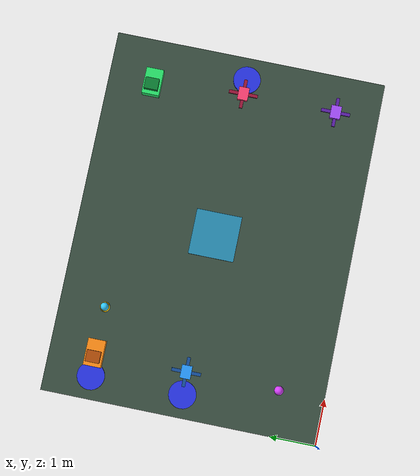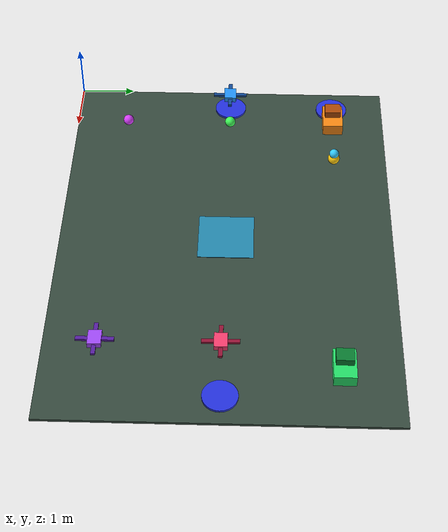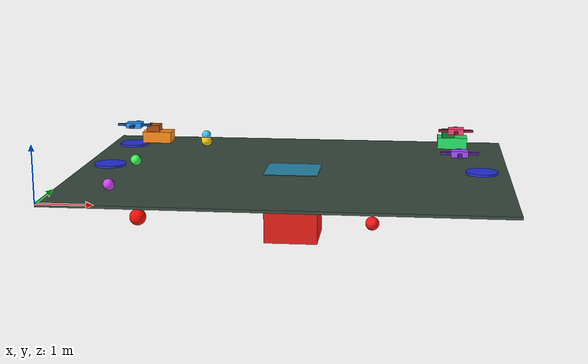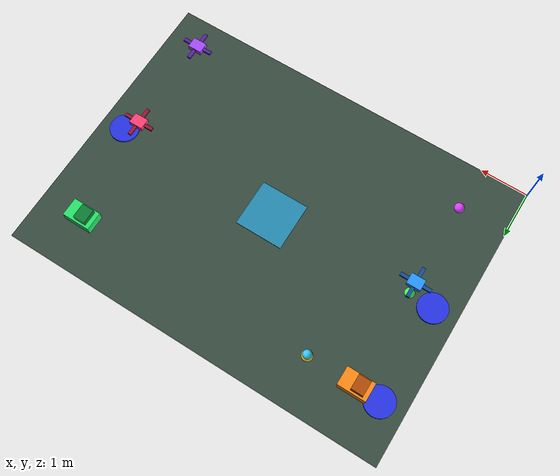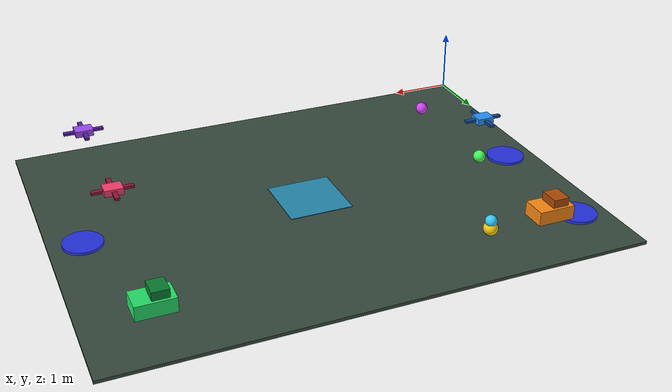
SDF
<?xml version="1.0"?>
<sdf version="1.10">
  <world name="sentinel">
    <gravity>0 0 0</gravity>
    <scene>
      <ambient>0.35 0.35 0.4 1</ambient>
      <background>0.06 0.08 0.12 1</background>
      <shadows>true</shadows>
    </scene>
    <light name="sun" type="directional">
      <pose>4 3 10 0 0 0</pose>
      <diffuse>0.9 0.9 0.9 1</diffuse>
      <specular>0.2 0.2 0.2 1</specular>
      <direction>-0.4 -0.5 -1</direction>
    </light>
    <model name="ground">
      <static>true</static>
      <pose>4 3 -0.03 0 0 0</pose>
      <link name="ground-link">
        <visual name="ground-visual">
          <geometry><box><size>8 6 0.05</size></box></geometry>
          <material><ambient>0.18 0.22 0.2 1</ambient><diffuse>0.22 0.3 0.25 1</diffuse></material>
        </visual>
      </link>
    </model>
    <model name="central-lane">
      <static>true</static>
      <pose>4 3 0.005 0 0 0</pose>
      <link name="lane-link">
        <visual name="lane-visual">
          <geometry><box><size>1 1 0.01</size></box></geometry>
          <material><ambient>0.15 0.55 0.7 1</ambient><diffuse>0.15 0.55 0.7 1</diffuse></material>
        </visual>
      </link>
    </model>
    <model name="central-lane-block">
      <static>true</static>
      <pose>4 3 -1 0 0 0</pose>
      <link name="block-link">
        <visual name="block-visual">
          <geometry><box><size>1 1 0.6</size></box></geometry>
          <material><ambient>0.8 0.08 0.05 1</ambient><diffuse>0.9 0.12 0.08 1</diffuse><emissive>0.3 0.02 0.01 1</emissive></material>
        </visual>
      </link>
    </model>
    <model name="partition-indicator">
      <static>true</static>
      <pose>1 3 -1 0 0 0</pose>
      <link name="indicator-link">
        <visual name="indicator-visual">
          <geometry><sphere><radius>0.16</radius></sphere></geometry>
          <material><ambient>1 0.05 0.02 1</ambient><diffuse>1 0.05 0.02 1</diffuse><emissive>0.8 0.02 0.01 1</emissive></material>
        </visual>
      </link>
    </model>
    <model name="uav-alpha">
      <static>true</static>
      <pose>1 3 0.8 0 0 0</pose>
      <link name="body">
        <visual name="body-visual"><geometry><box><size>0.28 0.22 0.1</size></box></geometry><material><ambient>0.15 0.6 1 1</ambient><diffuse>0.15 0.6 1 1</diffuse></material></visual>
        <visual name="arm-x"><geometry><box><size>0.62 0.07 0.04</size></box></geometry><material><ambient>0.08 0.3 0.6 1</ambient><diffuse>0.08 0.3 0.6 1</diffuse></material></visual>
        <visual name="arm-y"><geometry><box><size>0.07 0.62 0.04</size></box></geometry><material><ambient>0.08 0.3 0.6 1</ambient><diffuse>0.08 0.3 0.6 1</diffuse></material></visual>
      </link>
    </model>
    <model name="uav-bravo">
      <static>true</static>
      <pose>7 1 0.8 0 0 0</pose>
      <link name="body">
        <visual name="body-visual"><geometry><box><size>0.28 0.22 0.1</size></box></geometry><material><ambient>0.65 0.3 1 1</ambient><diffuse>0.65 0.3 1 1</diffuse></material></visual>
        <visual name="arm-x"><geometry><box><size>0.62 0.07 0.04</size></box></geometry><material><ambient>0.35 0.12 0.65 1</ambient><diffuse>0.35 0.12 0.65 1</diffuse></material></visual>
        <visual name="arm-y"><geometry><box><size>0.07 0.62 0.04</size></box></geometry><material><ambient>0.35 0.12 0.65 1</ambient><diffuse>0.35 0.12 0.65 1</diffuse></material></visual>
      </link>
    </model>
    <model name="ugv-charlie">
      <static>true</static>
      <pose>1 5 0.2 0 0 0</pose>
      <link name="body">
        <visual name="body-visual"><geometry><box><size>0.58 0.38 0.22</size></box></geometry><material><ambient>1 0.55 0.08 1</ambient><diffuse>1 0.55 0.08 1</diffuse></material></visual>
        <visual name="cab-visual"><pose>-0.08 0 0.16 0 0 0</pose><geometry><box><size>0.25 0.3 0.16</size></box></geometry><material><ambient>0.7 0.3 0.03 1</ambient><diffuse>0.7 0.3 0.03 1</diffuse></material></visual>
      </link>
    </model>
    <model name="ugv-delta">
      <static>true</static>
      <pose>7 5 0.2 0 0 0</pose>
      <link name="body">
        <visual name="body-visual"><geometry><box><size>0.58 0.38 0.22</size></box></geometry><material><ambient>0.15 0.9 0.42 1</ambient><diffuse>0.15 0.9 0.42 1</diffuse></material></visual>
        <visual name="cab-visual"><pose>-0.08 0 0.16 0 0 0</pose><geometry><box><size>0.25 0.3 0.16</size></box></geometry><material><ambient>0.04 0.5 0.2 1</ambient><diffuse>0.04 0.5 0.2 1</diffuse></material></visual>
      </link>
    </model>
    <model name="uav-echo">
      <static>true</static>
      <pose>7 3 0.8 0 0 0</pose>
      <link name="body">
        <visual name="body-visual"><geometry><box><size>0.28 0.22 0.1</size></box></geometry><material><ambient>1 0.25 0.45 1</ambient><diffuse>1 0.25 0.45 1</diffuse></material></visual>
        <visual name="arm-x"><geometry><box><size>0.62 0.07 0.04</size></box></geometry><material><ambient>0.6 0.08 0.22 1</ambient><diffuse>0.6 0.08 0.22 1</diffuse></material></visual>
        <visual name="arm-y"><geometry><box><size>0.07 0.62 0.04</size></box></geometry><material><ambient>0.6 0.08 0.22 1</ambient><diffuse>0.6 0.08 0.22 1</diffuse></material></visual>
      </link>
    </model>
    <!-- TODO: spawn task markers from trace data; this list is demo-specific -->
    <model name="delivery-west">
      <static>true</static><pose>2 5 0.12 0 0 0</pose><link name="marker"><visual name="visual"><geometry><sphere><radius>0.11</radius></sphere></geometry><material><ambient>1 0.8 0.05 1</ambient><diffuse>1 0.8 0.05 1</diffuse><emissive>0.25 0.18 0.01 1</emissive></material></visual></link>
    </model>
    <model name="inspect-west">
      <static>true</static><pose>2 5 0.24 0 0 0</pose><link name="marker"><visual name="visual"><geometry><sphere><radius>0.09</radius></sphere></geometry><material><ambient>0.2 0.8 1 1</ambient><diffuse>0.2 0.8 1 1</diffuse><emissive>0.02 0.2 0.3 1</emissive></material></visual></link>
    </model>
    <model name="relay-priority">
      <static>true</static><pose>5.5 3 -1 0 0 0</pose><link name="marker"><visual name="visual"><geometry><sphere><radius>0.13</radius></sphere></geometry><material><ambient>1 0.08 0.08 1</ambient><diffuse>1 0.08 0.08 1</diffuse><emissive>0.5 0.02 0.02 1</emissive></material></visual></link>
    </model>
    <model name="relay-west">
      <static>true</static><pose>1 1 0.12 0 0 0</pose><link name="marker"><visual name="visual"><geometry><sphere><radius>0.1</radius></sphere></geometry><material><ambient>0.85 0.25 1 1</ambient><diffuse>0.85 0.25 1 1</diffuse><emissive>0.2 0.04 0.3 1</emissive></material></visual></link>
    </model>
    <model name="search-owned">
      <static>true</static><pose>1 3 0.12 0 0 0</pose><link name="marker"><visual name="visual"><geometry><sphere><radius>0.1</radius></sphere></geometry><material><ambient>0.25 1 0.35 1</ambient><diffuse>0.25 1 0.35 1</diffuse><emissive>0.03 0.3 0.05 1</emissive></material></visual></link>
    </model>
    <model name="return-east">
      <static>true</static><pose>7.5 3 0.03 0 0 0</pose><link name="marker"><visual name="visual"><geometry><cylinder><radius>0.3</radius><length>0.04</length></cylinder></geometry><material><ambient>0.15 0.2 0.9 1</ambient><diffuse>0.15 0.2 0.9 1</diffuse></material></visual></link>
    </model>
    <model name="return-southwest">
      <static>true</static><pose>0.5 5 0.03 0 0 0</pose><link name="marker"><visual name="visual"><geometry><cylinder><radius>0.3</radius><length>0.04</length></cylinder></geometry><material><ambient>0.15 0.2 0.9 1</ambient><diffuse>0.15 0.2 0.9 1</diffuse></material></visual></link>
    </model>
    <model name="return-west">
      <static>true</static><pose>0.5 3 0.03 0 0 0</pose><link name="marker"><visual name="visual"><geometry><cylinder><radius>0.3</radius><length>0.04</length></cylinder></geometry><material><ambient>0.15 0.2 0.9 1</ambient><diffuse>0.15 0.2 0.9 1</diffuse></material></visual></link>
    </model>
  </world>
</sdf>
